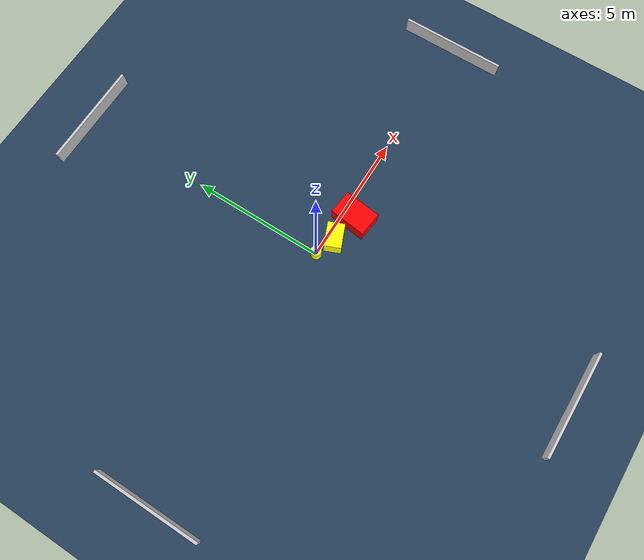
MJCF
<?xml version="1.0" ?>
<mujoco model="generated_environment">
  <option timestep="0.01" integrator="RK4" cone="elliptic"/>
  <default>
    <geom density="1"/>
  </default>
  <asset>
    <texture builtin="gradient" height="3072" name="skybox" rgb1="0.3 0.5 0.7" rgb2="0 0 0" type="skybox" width="512"/>
    <texture builtin="checker" height="300" name="groundplane" rgb1="0.2 0.3 0.4" rgb2="0.1 0.2 0.3" type="2d" width="300"/>
    <material name="groundplane" reflectance="0.2" texrepeat="5 5" texture="groundplane"/>
  </asset>
  <worldbody>
    <light dir="0 0 -1" directional="true" pos="0 0 1.5"/>
    <geom condim="3" friction="0.5 0.005 0.001" material="groundplane" name="floor" pos="0 0 0" size="0 0 0.05" type="plane"/>
    <body name="walls">
      <geom name="wall_1" condim="4" pos="-10.0 0.0 0.3" rgba="0.800000011920929 0.800000011920929 0.800000011920929 1.0" size="0.05 2.0 0.3" type="box"/>
      <geom name="wall_2" condim="4" pos="10.0 0.0 0.3" rgba="0.800000011920929 0.800000011920929 0.800000011920929 1.0" size="0.05 2.0 0.3" type="box"/>
      <geom name="wall_3" condim="4" pos="0.0 -10.0 0.3" rgba="0.800000011920929 0.800000011920929 0.800000011920929 1.0" size="2.0 0.05 0.3" type="box"/>
      <geom name="wall_4" condim="4" pos="0.0 10.0 0.3" rgba="0.800000011920929 0.800000011920929 0.800000011920929 1.0" size="2.0 0.05 0.3" type="box"/>
    </body>
    <body name="robot">
      <joint name="joint_x" type="slide" pos="0 0 0" axis="1 0 0"/>
      <joint name="joint_y" type="slide" pos="0 0 0" axis="0 1 0"/>
      <geom name="robot" type="cylinder" pos="0.0 0.0 0.2" size="0.2 0.2 0.0" mass="5.0" friction="1.0 0.005 0.0001" condim="4" rgba="1.0 1.0 0.0 1.0"/>
    </body>
    <body name="obstacle_1_movable">
      <geom name="obstacle_1_movable" condim="4" pos="0.7976527004691383 -0.2691021206715853 0.3" euler="0 0 22.50456100062526" friction="0.0 0.005 0.001" rgba="1.0 1.0 0.0 1.0" size="0.46338259889210026 0.3157440115277274 0.3" type="box" mass="0.1"/>
      <joint type="free"/>
    </body>
    <body name="obstacle_2_static">
      <geom name="obstacle_2_static" condim="4" pos="1.8885973343319382 -0.45358818984309973 0.3" euler="0 0 173.0299730589235" friction="0.0 0.005 0.001" rgba="1.0 0.0 0.0 1.0" size="0.46391916136455286 0.6910543334580805 0.3" type="box"/>
    </body>
  </worldbody>
  <actuator>
    <motor name="actuator_x" joint="joint_x" gear="1" ctrlrange="-1 1"/>
    <motor name="actuator_y" joint="joint_y" gear="1" ctrlrange="-1 1"/>
  </actuator>
</mujoco>
